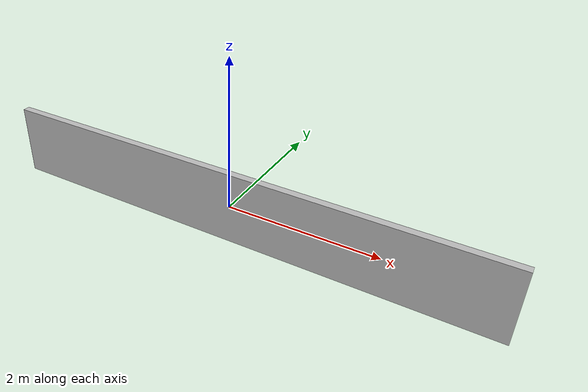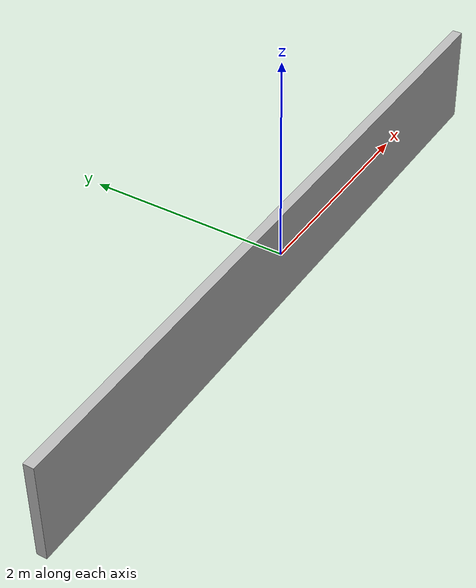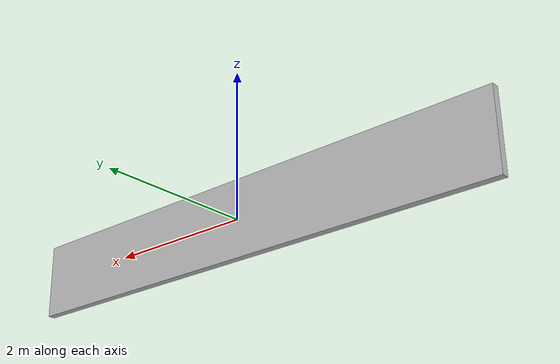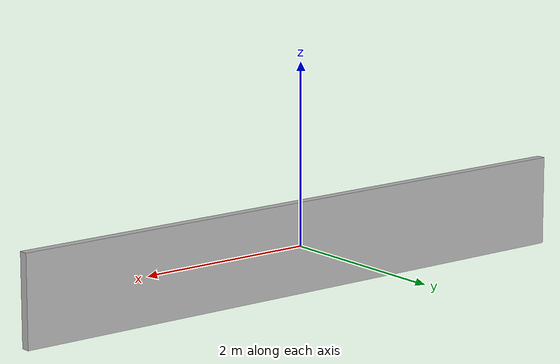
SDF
<?xml version="1.0" ?>
<sdf version="1.7">
  <model name="wall_7_x">
   <static>true</static>
    <link name="link">
      <collision name="collision">
        <geometry>
          <box>
            <size>7 0.1 1</size>  <!-- default size -->
          </box>
        </geometry>
      </collision>
      <visual name="visual">
        <geometry>
          <box>
            <size>7 0.1 1</size>
          </box>
        </geometry>
      </visual>
    </link>
  </model>
</sdf>
